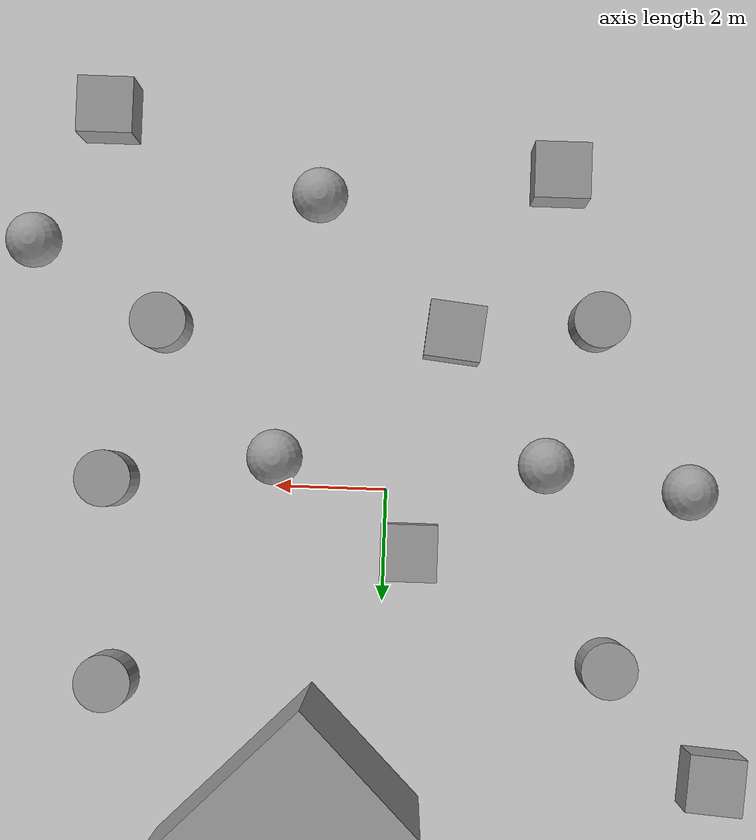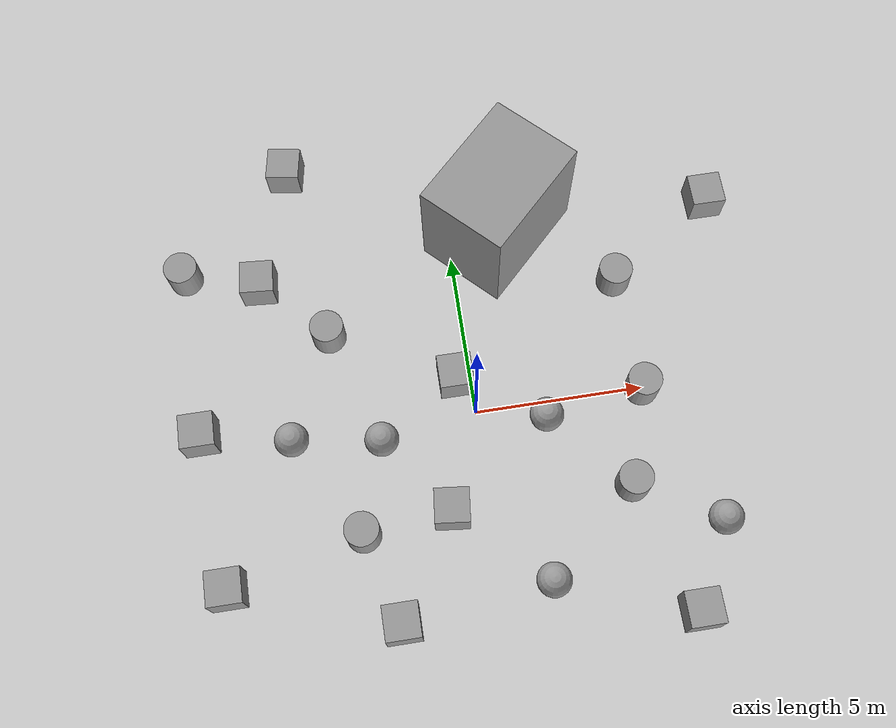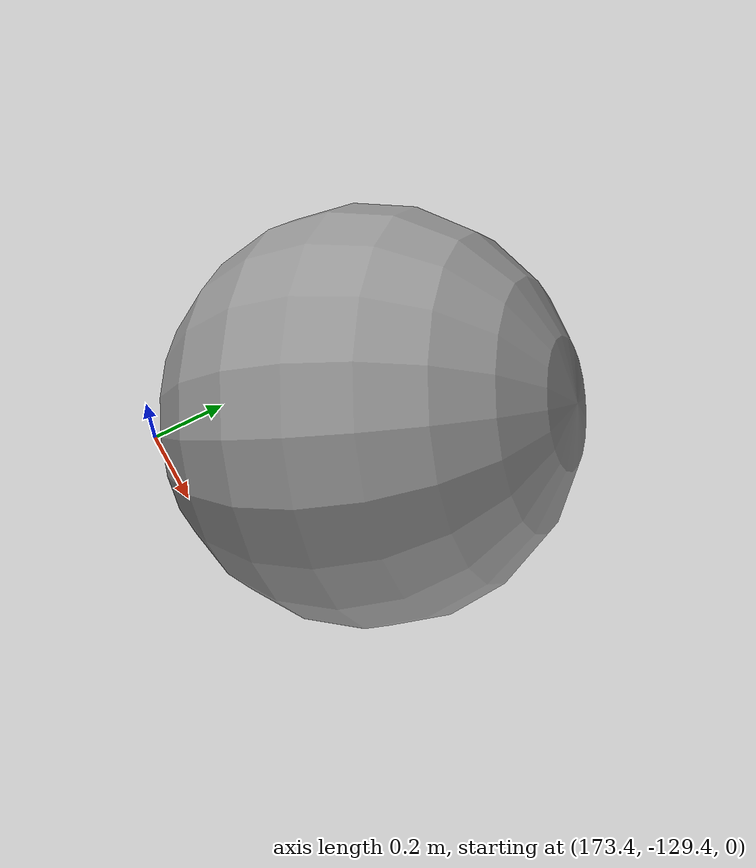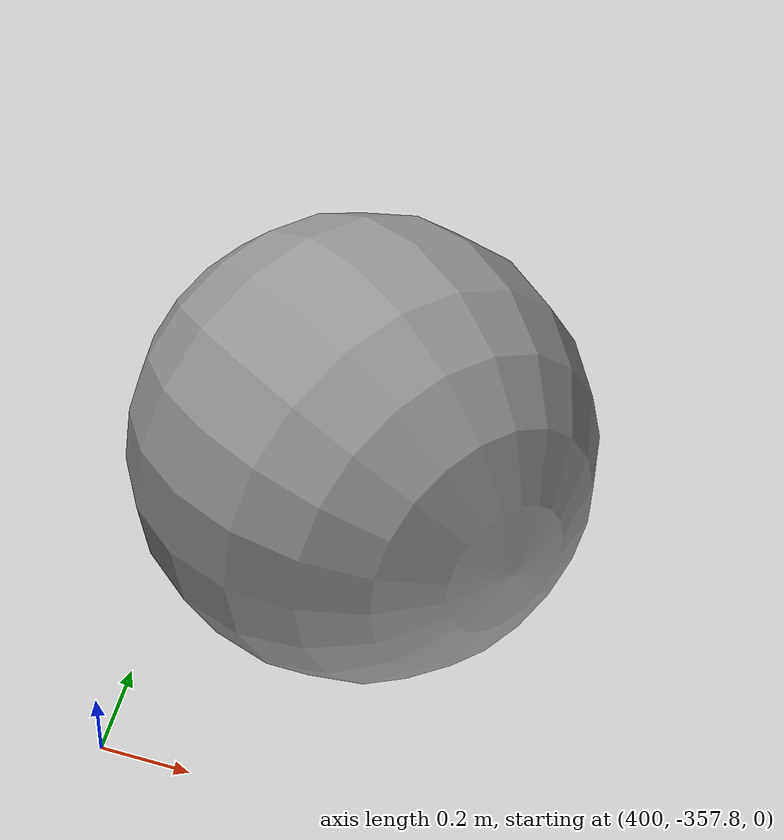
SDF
<sdf version="1.7">
 <world name="default">
  <light name="sun" type="directional">
   <pose>0 0 10 0 -0 0</pose>
   <diffuse>0.8 0.8 0.8 1</diffuse>
   <specular>0.2 0.2 0.2 1</specular>
   <attenuation>
    <range>1000</range>
    <constant>0.9</constant>
    <linear>0.01</linear>
    <quadratic>0.001</quadratic>
   </attenuation>
   <direction>-0.5 0.1 -0.9</direction>
   <spot><inner_angle>0</inner_angle><outer_angle>0</outer_angle><falloff>0</falloff></spot>
  </light>
  <model name="ground_plane">
   <static>1</static>
   <link name="link">
    <collision name="collision">
     <geometry><plane><normal>0 0 1</normal><size>100 100</size></plane></geometry>
     <surface>
      <contact><collide_bitmask>65535</collide_bitmask></contact>
      <friction><ode><mu>100</mu><mu2>50</mu2></ode></friction>
     </surface>
    </collision>
    <visual name="visual">
     <cast_shadows>0</cast_shadows>
     <geometry><plane><normal>0 0 1</normal><size>100 100</size></plane></geometry>
     <material>
      <script><uri>file://media/materials/scripts/gazebo.material</uri><name>Gazebo/Grey</name></script>
     </material>
    </visual>
   </link>
  </model>
  <gravity>0 0 -100</gravity>
  <magnetic_field>6e-06 2.3e-05 -4.2e-05</magnetic_field>
  <atmosphere type="adiabatic"/>
  <physics type="ode">
   <max_step_size>0.006</max_step_size>
   <real_time_factor>1</real_time_factor>
   <real_time_update_rate>1000</real_time_update_rate>
  </physics>
  <scene><ambient>0.4 0.4 0.4 1</ambient><background>0.7 0.7 0.7 1</background><shadows>1</shadows></scene>
  <spherical_coordinates>
   <surface_model>EARTH_WGS84</surface_model>
   <latitude_deg>0</latitude_deg>
   <longitude_deg>0</longitude_deg>
   <elevation>0</elevation>
   <heading_deg>0</heading_deg>
  </spherical_coordinates>
  <model name="unit_box">
   <pose>-4.74289 8.6635 0.49851 4e-06 -0.002993 -0.173179</pose>
   <link name="link">
    <inertial>
     <mass>1</mass>
     <inertia>
      <ixx>0.166667</ixx>
      <ixy>0</ixy>
      <ixz>0</ixz>
      <iyy>0.166667</iyy>
      <iyz>0</iyz>
      <izz>0.166667</izz>
     </inertia>
    </inertial>
    <collision name="collision"><geometry><box><size>1 1 1</size></box></geometry></collision>
    <visual name="visual">
     <geometry><box><size>1 1 1</size></box></geometry>
     <material>
      <script><name>Gazebo/Grey</name><uri>file://media/materials/scripts/gazebo.material</uri></script>
     </material>
    </visual>
   </link>
  </model>
  <model name="unit_box_0">
   <pose>-8.02637 0.435829 0.49851 -0.002993 3e-06 0</pose>
   <link name="link">
    <inertial>
     <mass>1</mass>
     <inertia>
      <ixx>0.166667</ixx>
      <ixy>0</ixy>
      <ixz>0</ixz>
      <iyy>0.166667</iyy>
      <iyz>0</iyz>
      <izz>0.166667</izz>
     </inertia>
    </inertial>
    <collision name="collision"><geometry><box><size>1 1 1</size></box></geometry></collision>
    <visual name="visual">
     <geometry><box><size>1 1 1</size></box></geometry>
     <material>
      <script><name>Gazebo/Grey</name><uri>file://media/materials/scripts/gazebo.material</uri></script>
     </material>
    </visual>
   </link>
  </model>
  <model name="unit_cylinder">
   <pose>-4.00653 3.01925 0.498402 0.003207 0.000155 0.081418</pose>
   <link name="link">
    <inertial>
     <mass>1</mass>
     <inertia><ixx>0.145833</ixx><ixy>0</ixy><ixz>0</ixz><iyy>0.145833</iyy><iyz>0</iyz><izz>0.125</izz></inertia>
    </inertial>
    <collision name="collision">
     <geometry><cylinder><radius>0.5</radius><length>1</length></cylinder></geometry>
    </collision>
    <visual name="visual">
     <geometry><cylinder><radius>0.5</radius><length>1</length></cylinder></geometry>
     <material>
      <script><name>Gazebo/Grey</name><uri>file://media/materials/scripts/gazebo.material</uri></script>
     </material>
    </visual>
   </link>
  </model>
  <model name="unit_sphere">
   <pose>173.834 -128.979 0.5 -2.04904 0.639983 2.21173</pose>
   <link name="link">
    <inertial>
     <mass>1</mass>
     <inertia><ixx>0.1</ixx><ixy>0</ixy><ixz>0</ixz><iyy>0.1</iyy><iyz>0</iyz><izz>0.1</izz></inertia>
    </inertial>
    <collision name="collision"><geometry><sphere><radius>0.5</radius></sphere></geometry></collision>
    <visual name="visual">
     <geometry><sphere><radius>0.5</radius></sphere></geometry>
     <material>
      <script><name>Gazebo/Grey</name><uri>file://media/materials/scripts/gazebo.material</uri></script>
     </material>
    </visual>
   </link>
  </model>
  <model name="unit_box_1">
   <pose>-1.13522 -2.83546 0.49851 2e-06 -0.002993 -0.107852</pose>
   <link name="link">
    <inertial>
     <mass>1</mass>
     <inertia>
      <ixx>0.166667</ixx>
      <ixy>0</ixy>
      <ixz>0</ixz>
      <iyy>0.166667</iyy>
      <iyz>0</iyz>
      <izz>0.166667</izz>
     </inertia>
    </inertial>
    <collision name="collision"><geometry><box><size>1 1 1</size></box></geometry></collision>
    <visual name="visual">
     <geometry><box><size>1 1 1</size></box></geometry>
     <material>
      <script><name>Gazebo/Grey</name><uri>file://media/materials/scripts/gazebo.material</uri></script>
     </material>
    </visual>
   </link>
  </model>
  <model name="unit_cylinder_0">
   <pose>-8.14712 5.57058 0.498401 0.002723 0.001701 0.0182</pose>
   <link name="link">
    <inertial>
     <mass>1</mass>
     <inertia><ixx>0.145833</ixx><ixy>0</ixy><ixz>0</ixz><iyy>0.145833</iyy><iyz>0</iyz><izz>0.125</izz></inertia>
    </inertial>
    <collision name="collision">
     <geometry><cylinder><radius>0.5</radius><length>1</length></cylinder></geometry>
    </collision>
    <visual name="visual">
     <geometry><cylinder><radius>0.5</radius><length>1</length></cylinder></geometry>
     <material>
      <script><name>Gazebo/Grey</name><uri>file://media/materials/scripts/gazebo.material</uri></script>
     </material>
    </visual>
   </link>
  </model>
  <model name="unit_box_2">
   <pose>1.56282 5.82524 1.79764 -0.001083 2.2e-05 -0.785186</pose>
   <link name="link">
    <inertial>
     <mass>1</mass>
     <inertia>
      <ixx>0.166667</ixx>
      <ixy>0</ixy>
      <ixz>0</ixz>
      <iyy>0.166667</iyy>
      <iyz>0</iyz>
      <izz>0.166667</izz>
     </inertia>
    </inertial>
    <collision name="collision"><geometry><box><size>2.79889 3.7849 3.60083</size></box></geometry></collision>
    <visual name="visual">
     <geometry><box><size>2.79889 3.7849 3.60083</size></box></geometry>
     <material>
      <script><name>Gazebo/Grey</name><uri>file://media/materials/scripts/gazebo.material</uri></script>
     </material>
    </visual>
   </link>
  </model>
  <model name="unit_sphere_0">
   <pose>418.007 5.71925 0.5 0.244712 -0.84117 1.92086</pose>
   <link name="link">
    <inertial>
     <mass>1</mass>
     <inertia><ixx>0.1</ixx><ixy>0</ixy><ixz>0</ixz><iyy>0.1</iyy><iyz>0</iyz><izz>0.1</izz></inertia>
    </inertial>
    <collision name="collision"><geometry><sphere><radius>0.5</radius></sphere></geometry></collision>
    <visual name="visual">
     <geometry><sphere><radius>0.5</radius></sphere></geometry>
     <material>
      <script><name>Gazebo/Grey</name><uri>file://media/materials/scripts/gazebo.material</uri></script>
     </material>
    </visual>
   </link>
  </model>
  <model name="unit_sphere_1">
   <pose>158.14 -118.6 0.5 -2.1564 -0.468852 2.73922</pose>
   <link name="link">
    <inertial>
     <mass>1</mass>
     <inertia><ixx>0.1</ixx><ixy>0</ixy><ixz>0</ixz><iyy>0.1</iyy><iyz>0</iyz><izz>0.1</izz></inertia>
    </inertial>
    <collision name="collision"><geometry><sphere><radius>0.5</radius></sphere></geometry></collision>
    <visual name="visual">
     <geometry><sphere><radius>0.5</radius></sphere></geometry>
     <material>
      <script><name>Gazebo/Grey</name><uri>file://media/materials/scripts/gazebo.material</uri></script>
     </material>
    </visual>
   </link>
  </model>
  <model name="unit_sphere_2">
   <pose>400.402 -357.207 0.5 1.30165 0.726281 0.797218</pose>
   <link name="link">
    <inertial>
     <mass>1</mass>
     <inertia><ixx>0.1</ixx><ixy>0</ixy><ixz>0</ixz><iyy>0.1</iyy><iyz>0</iyz><izz>0.1</izz></inertia>
    </inertial>
    <collision name="collision"><geometry><sphere><radius>0.5</radius></sphere></geometry></collision>
    <visual name="visual">
     <geometry><sphere><radius>0.5</radius></sphere></geometry>
     <material>
      <script><name>Gazebo/Grey</name><uri>file://media/materials/scripts/gazebo.material</uri></script>
     </material>
    </visual>
   </link>
  </model>
  <model name="unit_sphere_3">
   <pose>305.983 -73.9622 0.5 -0.841955 -0.599267 1.06037</pose>
   <link name="link">
    <inertial>
     <mass>1</mass>
     <inertia><ixx>0.1</ixx><ixy>0</ixy><ixz>0</ixz><iyy>0.1</iyy><iyz>0</iyz><izz>0.1</izz></inertia>
    </inertial>
    <collision name="collision"><geometry><sphere><radius>0.5</radius></sphere></geometry></collision>
    <visual name="visual">
     <geometry><sphere><radius>0.5</radius></sphere></geometry>
     <material>
      <script><name>Gazebo/Grey</name><uri>file://media/materials/scripts/gazebo.material</uri></script>
     </material>
    </visual>
   </link>
  </model>
  <model name="unit_sphere_4">
   <pose>82.5624 307.216 0.5 2.22957 0.039982 -1.98267</pose>
   <link name="link">
    <inertial>
     <mass>1</mass>
     <inertia><ixx>0.1</ixx><ixy>0</ixy><ixz>0</ixz><iyy>0.1</iyy><iyz>0</iyz><izz>0.1</izz></inertia>
    </inertial>
    <collision name="collision"><geometry><sphere><radius>0.5</radius></sphere></geometry></collision>
    <visual name="visual">
     <geometry><sphere><radius>0.5</radius></sphere></geometry>
     <material>
      <script><name>Gazebo/Grey</name><uri>file://media/materials/scripts/gazebo.material</uri></script>
     </material>
    </visual>
   </link>
  </model>
  <model name="unit_sphere_5">
   <pose>1.99917 -0.515393 0.5 0 -0 0</pose>
   <link name="link">
    <inertial>
     <mass>1</mass>
     <inertia><ixx>0.1</ixx><ixy>0</ixy><ixz>0</ixz><iyy>0.1</iyy><iyz>0</iyz><izz>0.1</izz></inertia>
    </inertial>
    <collision name="collision"><geometry><sphere><radius>0.5</radius></sphere></geometry></collision>
    <visual name="visual">
     <geometry><sphere><radius>0.5</radius></sphere></geometry>
     <material>
      <script><name>Gazebo/Grey</name><uri>file://media/materials/scripts/gazebo.material</uri></script>
     </material>
    </visual>
   </link>
  </model>
  <model name="unit_cylinder_1">
   <pose>-3.70381 -3.11528 0.498401 -0.002476 -0.002045 -0.00119</pose>
   <link name="link">
    <inertial>
     <mass>1</mass>
     <inertia><ixx>0.145833</ixx><ixy>0</ixy><ixz>0</ixz><iyy>0.145833</iyy><iyz>0</iyz><izz>0.125</izz></inertia>
    </inertial>
    <collision name="collision">
     <geometry><cylinder><radius>0.5</radius><length>1</length></cylinder></geometry>
    </collision>
    <visual name="visual">
     <geometry><cylinder><radius>0.5</radius><length>1</length></cylinder></geometry>
     <material>
      <script><name>Gazebo/Grey</name><uri>file://media/materials/scripts/gazebo.material</uri></script>
     </material>
    </visual>
   </link>
  </model>
  <model name="unit_box_3">
   <pose>5.19144 -6.6399 0.49851 -0.002993 3e-06 0</pose>
   <link name="link">
    <inertial>
     <mass>1</mass>
     <inertia>
      <ixx>0.166667</ixx>
      <ixy>0</ixy>
      <ixz>0</ixz>
      <iyy>0.166667</iyy>
      <iyz>0</iyz>
      <izz>0.166667</izz>
     </inertia>
    </inertial>
    <collision name="collision"><geometry><box><size>1 1 1</size></box></geometry></collision>
    <visual name="visual">
     <geometry><box><size>1 1 1</size></box></geometry>
     <material>
      <script><name>Gazebo/Grey</name><uri>file://media/materials/scripts/gazebo.material</uri></script>
     </material>
    </visual>
   </link>
  </model>
  <model name="unit_sphere_6">
   <pose>1.35395 -5.23088 0.5 0 -0 0</pose>
   <link name="link">
    <inertial>
     <mass>1</mass>
     <inertia><ixx>0.1</ixx><ixy>0</ixy><ixz>0</ixz><iyy>0.1</iyy><iyz>0</iyz><izz>0.1</izz></inertia>
    </inertial>
    <collision name="collision"><geometry><sphere><radius>0.5</radius></sphere></geometry></collision>
    <visual name="visual">
     <geometry><sphere><radius>0.5</radius></sphere></geometry>
     <material>
      <script><name>Gazebo/Grey</name><uri>file://media/materials/scripts/gazebo.material</uri></script>
     </material>
    </visual>
   </link>
  </model>
  <model name="unit_cylinder_2">
   <pose>4.95904 -0.036094 0.498401 0.002475 0.002045 -0.001189</pose>
   <link name="link">
    <inertial>
     <mass>1</mass>
     <inertia><ixx>0.145833</ixx><ixy>0</ixy><ixz>0</ixz><iyy>0.145833</iyy><iyz>0</iyz><izz>0.125</izz></inertia>
    </inertial>
    <collision name="collision">
     <geometry><cylinder><radius>0.5</radius><length>1</length></cylinder></geometry>
    </collision>
    <visual name="visual">
     <geometry><cylinder><radius>0.5</radius><length>1</length></cylinder></geometry>
     <material>
      <script><name>Gazebo/Grey</name><uri>file://media/materials/scripts/gazebo.material</uri></script>
     </material>
    </visual>
   </link>
  </model>
  <model name="unit_sphere_7">
   <pose>-5.41019 -0.137921 0.5 0 -0 0</pose>
   <link name="link">
    <inertial>
     <mass>1</mass>
     <inertia><ixx>0.1</ixx><ixy>0</ixy><ixz>0</ixz><iyy>0.1</iyy><iyz>0</iyz><izz>0.1</izz></inertia>
    </inertial>
    <collision name="collision"><geometry><sphere><radius>0.5</radius></sphere></geometry></collision>
    <visual name="visual">
     <geometry><sphere><radius>0.5</radius></sphere></geometry>
     <material>
      <script><name>Gazebo/Grey</name><uri>file://media/materials/scripts/gazebo.material</uri></script>
     </material>
    </visual>
   </link>
  </model>
  <model name="unit_box_4">
   <pose>-5.91104 4.93337 0.49851 -0.002993 0 -0.075557</pose>
   <link name="link">
    <inertial>
     <mass>1</mass>
     <inertia>
      <ixx>0.166667</ixx>
      <ixy>0</ixy>
      <ixz>0</ixz>
      <iyy>0.166667</iyy>
      <iyz>0</iyz>
      <izz>0.166667</izz>
     </inertia>
    </inertial>
    <collision name="collision"><geometry><box><size>1 1 1</size></box></geometry></collision>
    <visual name="visual">
     <geometry><box><size>1 1 1</size></box></geometry>
     <material>
      <script><name>Gazebo/Grey</name><uri>file://media/materials/scripts/gazebo.material</uri></script>
     </material>
    </visual>
   </link>
  </model>
  <model name="unit_box_5">
   <pose>-2.94299 -5.74538 0.49851 -0.002993 3e-06 0</pose>
   <link name="link">
    <inertial>
     <mass>1</mass>
     <inertia>
      <ixx>0.166667</ixx>
      <ixy>0</ixy>
      <ixz>0</ixz>
      <iyy>0.166667</iyy>
      <iyz>0</iyz>
      <izz>0.166667</izz>
     </inertia>
    </inertial>
    <collision name="collision"><geometry><box><size>1 1 1</size></box></geometry></collision>
    <visual name="visual">
     <geometry><box><size>1 1 1</size></box></geometry>
     <material>
      <script><name>Gazebo/Grey</name><uri>file://media/materials/scripts/gazebo.material</uri></script>
     </material>
    </visual>
   </link>
  </model>
  <model name="unit_box_6">
   <pose>-0.444953 1.08715 0.49851 -0.002993 3e-06 0</pose>
   <link name="link">
    <inertial>
     <mass>1</mass>
     <inertia>
      <ixx>0.166667</ixx>
      <ixy>0</ixy>
      <ixz>0</ixz>
      <iyy>0.166667</iyy>
      <iyz>0</iyz>
      <izz>0.166667</izz>
     </inertia>
    </inertial>
    <collision name="collision"><geometry><box><size>1 1 1</size></box></geometry></collision>
    <visual name="visual">
     <geometry><box><size>1 1 1</size></box></geometry>
     <material>
      <script><name>Gazebo/Grey</name><uri>file://media/materials/scripts/gazebo.material</uri></script>
     </material>
    </visual>
   </link>
  </model>
  <model name="unit_sphere_8">
   <pose>6.44819 -4.25459 0.5 0 -0 0</pose>
   <link name="link">
    <inertial>
     <mass>1</mass>
     <inertia><ixx>0.1</ixx><ixy>0</ixy><ixz>0</ixz><iyy>0.1</iyy><iyz>0</iyz><izz>0.1</izz></inertia>
    </inertial>
    <collision name="collision"><geometry><sphere><radius>0.5</radius></sphere></geometry></collision>
    <visual name="visual">
     <geometry><sphere><radius>0.5</radius></sphere></geometry>
     <material>
      <script><name>Gazebo/Grey</name><uri>file://media/materials/scripts/gazebo.material</uri></script>
     </material>
    </visual>
   </link>
  </model>
  <model name="unit_cylinder_3">
   <pose>4.1017 -2.84023 0.498401 0.002475 0.002046 -0.001185</pose>
   <link name="link">
    <inertial>
     <mass>1</mass>
     <inertia><ixx>0.145833</ixx><ixy>0</ixy><ixz>0</ixz><iyy>0.145833</iyy><iyz>0</iyz><izz>0.125</izz></inertia>
    </inertial>
    <collision name="collision">
     <geometry><cylinder><radius>0.5</radius><length>1</length></cylinder></geometry>
    </collision>
    <visual name="visual">
     <geometry><cylinder><radius>0.5</radius><length>1</length></cylinder></geometry>
     <material>
      <script><name>Gazebo/Grey</name><uri>file://media/materials/scripts/gazebo.material</uri></script>
     </material>
    </visual>
   </link>
  </model>
  <model name="unit_box_7">
   <pose>8.12137 5.76128 0.49851 0.002993 3e-06 0</pose>
   <link name="link">
    <inertial>
     <mass>1</mass>
     <inertia>
      <ixx>0.166667</ixx>
      <ixy>0</ixy>
      <ixz>0</ixz>
      <iyy>0.166667</iyy>
      <iyz>0</iyz>
      <izz>0.166667</izz>
     </inertia>
    </inertial>
    <collision name="collision"><geometry><box><size>1 1 1</size></box></geometry></collision>
    <visual name="visual">
     <geometry><box><size>1 1 1</size></box></geometry>
     <material>
      <script><name>Gazebo/Grey</name><uri>file://media/materials/scripts/gazebo.material</uri></script>
     </material>
    </visual>
   </link>
  </model>
  <model name="unit_box_8">
   <pose>-7.60422 -4.09561 0.49851 -0.002993 3e-06 0</pose>
   <link name="link">
    <inertial>
     <mass>1</mass>
     <inertia>
      <ixx>0.166667</ixx>
      <ixy>0</ixy>
      <ixz>0</ixz>
      <iyy>0.166667</iyy>
      <iyz>0</iyz>
      <izz>0.166667</izz>
     </inertia>
    </inertial>
    <collision name="collision"><geometry><box><size>1 1 1</size></box></geometry></collision>
    <visual name="visual">
     <geometry><box><size>1 1 1</size></box></geometry>
     <material>
      <script><name>Gazebo/Grey</name><uri>file://media/materials/scripts/gazebo.material</uri></script>
     </material>
    </visual>
   </link>
  </model>
  <model name="unit_sphere_9">
   <pose>-2.83868 -0.522124 0.5 0 -0 0</pose>
   <link name="link">
    <inertial>
     <mass>1</mass>
     <inertia><ixx>0.1</ixx><ixy>0</ixy><ixz>0</ixz><iyy>0.1</iyy><iyz>0</iyz><izz>0.1</izz></inertia>
    </inertial>
    <collision name="collision"><geometry><sphere><radius>0.5</radius></sphere></geometry></collision>
    <visual name="visual">
     <geometry><sphere><radius>0.5</radius></sphere></geometry>
     <material>
      <script><name>Gazebo/Grey</name><uri>file://media/materials/scripts/gazebo.material</uri></script>
     </material>
    </visual>
   </link>
  </model>
  <model name="unit_cylinder_4">
   <pose>4.81806 3.53123 0.498401 0.00244 0.002087 -0.000974</pose>
   <link name="link">
    <inertial>
     <mass>1</mass>
     <inertia><ixx>0.145833</ixx><ixy>0</ixy><ixz>0</ixz><iyy>0.145833</iyy><iyz>0</iyz><izz>0.125</izz></inertia>
    </inertial>
    <collision name="collision">
     <geometry><cylinder><radius>0.5</radius><length>1</length></cylinder></geometry>
    </collision>
    <visual name="visual">
     <geometry><cylinder><radius>0.5</radius><length>1</length></cylinder></geometry>
     <material>
      <script><name>Gazebo/Grey</name><uri>file://media/materials/scripts/gazebo.material</uri></script>
     </material>
    </visual>
   </link>
  </model>
 </world>
</sdf>
